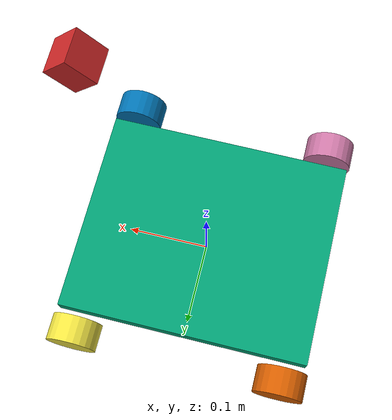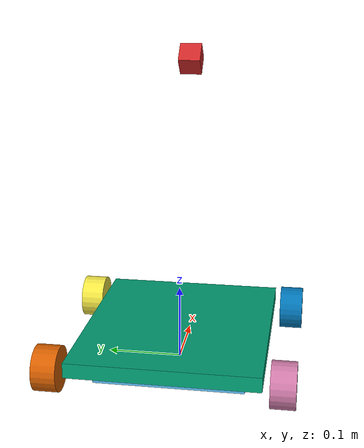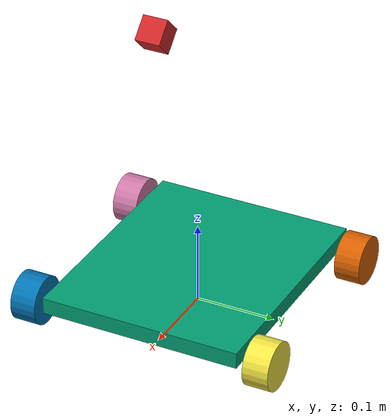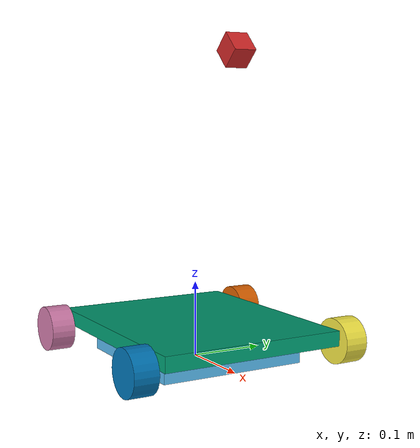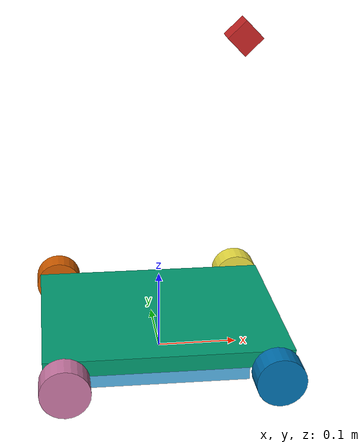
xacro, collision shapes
<?xml version="0.46"?>

<robot xmlns:xacro="http://ros.org/wiki/xacro" name="megabot">

  <!-- Include files for robot subcomponents -->
  <xacro:include filename="$(find megabot_description)/urdf/wheel.urdf.xacro" />
  <xacro:include filename="$(find megabot_description)/urdf/camera.urdf.xacro" />

  <!-- Global constants -->
  <xacro:property name="M_PI" value="3.14159"/>

  <!-- Root link for motion control -->
  <link name="base_footprint">
   <visual>
      <origin xyz="0 0 0" rpy="0 0 0" />
      <geometry>
        <box size="0.001 0.001 0.001" />
      </geometry>
    </visual>
  </link>
  <joint name="base_link_joint" type="fixed">
    <origin xyz="0 0 0" rpy="0 0 0" />
    <parent link="base_footprint"/>
    <child link="base_link" />
  </joint>

  <!-- Reference link -->
  <link name="base_link">
    <inertial>
      <mass value="50" />
      <origin xyz="0 0 0" />
      <inertia ixx="50.0" ixy="0.0" ixz="0.0"
        iyy="50.0" iyz="0.0"
        izz="50.0" />
    </inertial>
    <collision>
      <origin xyz="0 0 0.01" />
      <geometry>
        <box size="0.2 0.2 0.02" />
      </geometry>
    </collision>
  </link>

  <!-- Robot base plate -->
  <link name="base_plate">
    <inertial>
      <mass value="50" />
      <origin xyz="0 0 0" />
      <inertia ixx="50.0" ixy="0.0" ixz="0.0"
        iyy="50.0" iyz="0.0"
        izz="50.0" />
    </inertial>
    <visual>
      <geometry>
        <box size="0.3 0.25 0.02" />
      </geometry>
    </visual>
    <collision>
      <geometry>
        <box size="0.3 0.25 0.02" />
      </geometry>
    </collision>
  </link>
  <joint name="base_plate_joint" type="fixed">
    <origin xyz="0 0 0.04" rpy="0 0 0" />
    <parent link="base_link"/>
    <child link="base_plate" />
  </joint>

  <!-- Wheel parameters -->
  <xacro:property name="wheelbase" value="0.25" />
  <xacro:property name="track" value="0.3" />
  <xacro:property name="wheel_vertical_offset" value="0.03" />

  <!-- Wheel properties -->
  <xacro:property name="wheel_length" value="0.032" />
  <xacro:property name="wheel_radius" value="0.03" />

  <!-- Add wheels via macros -->
  <xacro:megabot_wheel wheel_prefix="front_left">
    <origin xyz="${wheelbase/2} ${track/2} ${wheel_vertical_offset}" rpy="0 0 0" />
  </xacro:megabot_wheel>
  <xacro:megabot_wheel wheel_prefix="front_right">
    <origin xyz="${wheelbase/2} ${-track/2} ${wheel_vertical_offset}" rpy="0 0 0" />
  </xacro:megabot_wheel>
  <xacro:megabot_wheel wheel_prefix="rear_left">
    <origin xyz="${-wheelbase/2} ${track/2} ${wheel_vertical_offset}" rpy="0 0 0" />
  </xacro:megabot_wheel>
  <xacro:megabot_wheel wheel_prefix="rear_right">
    <origin xyz="${-wheelbase/2} ${-track/2} ${wheel_vertical_offset}" rpy="0 0 0" />
  </xacro:megabot_wheel>

  <!-- Camera parameters -->
  <xacro:property name="camera_size" value="0.03" /> <!-- Size of square 'camera' box -->
  <xacro:property name="camera_front_offset" value="0.1" /> <!-- Size of square 'camera' box -->
  <xacro:property name="camera_height" value="0.4" /> <!-- Size of square 'camera' box -->
  <xacro:property name="camera_pitch" value="0.8" /> <!-- Size of square 'camera' box -->

  <!-- Add camera via macros -->
  <xacro:megabot_camera />

  <!-- Set method of motion control in Gazebo -->
  <gazebo>
    <plugin name="object_controller" filename="libgazebo_ros_planar_move.so">
      <commandTopic>cmd_vel</commandTopic>
      <odometryTopic>odom</odometryTopic>
      <odometryFrame>odom</odometryFrame>
      <odometryRate>20.0</odometryRate>
      <robotBaseFrame>base_footprint</robotBaseFrame>
    </plugin>
  </gazebo>

</robot>

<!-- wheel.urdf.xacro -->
<robot xmlns:xacro="http://ros.org/wiki/xacro" name="megabot_wheel">

	<xacro:macro name="megabot_wheel" params="wheel_prefix *joint_pose">
		<link name="${wheel_prefix}_wheel_link">
			<inertial>
				<mass value="2.637" />
				<origin xyz="0 0 0" />
				<inertia  ixx="0.02467" ixy="0" ixz="0" iyy="0.04411" iyz="0" izz="0.02467" />
			</inertial>
			<visual>
				<origin xyz="0 0 0" rpy="0 0 0" />
				<geometry>
					<mesh filename="package://husky_description/meshes/wheel.dae" />
				</geometry>
			</visual>
			<collision>
				<origin xyz="0 0 0" rpy="${M_PI/2} 0 0" />
				<geometry>
					<cylinder length="${wheel_length}" radius="${wheel_radius}" />
				</geometry>
			</collision>
		</link>

		<gazebo reference="${wheel_prefix}_wheel_link">
			<mu1 value="1.0"/>
			<mu2 value="1.0"/>
			<kp value="10000000.0" />
			<kd value="1.0" />
			<fdir1 value="1 0 0"/>
		</gazebo>

		<joint name="${wheel_prefix}_wheel" type="continuous">
			<parent link="base_link"/>
			<child link="${wheel_prefix}_wheel_link"/>
			<xacro:insert_block name="joint_pose"/>
			<axis xyz="0 1 0" rpy="0 0 0" />
		</joint>

		<transmission name="${wheel_prefix}_wheel_trans" type="SimpleTransmission">
			<type>transmission_interface/SimpleTransmission</type>
			<actuator name="${wheel_prefix}_wheel_motor">
				<mechanicalReduction>1</mechanicalReduction>
			</actuator>
			<joint name="${wheel_prefix}_wheel">
				<hardwareInterface>hardware_interface/VelocityJointInterface</hardwareInterface>
			</joint>
		</transmission>

	</xacro:macro>
</robot>

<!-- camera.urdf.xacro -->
<robot xmlns:xacro="http://ros.org/wiki/xacro" name="megabot_camera">

    <!-- Define macro for camera component -->
	<xacro:macro name="megabot_camera">
        <!-- Physical parameters -->
        <link name="camera_link">
            <collision>
            <origin xyz="0 0 0" rpy="0 0 0"/>
            <geometry>
            <box size="${camera_size} ${camera_size} ${camera_size}"/>
            </geometry>
            </collision>

            <visual>
            <origin xyz="0 0 0" rpy="0 0 0"/>
            <geometry>
            <box size="${camera_size} ${camera_size} ${camera_size}"/>
            </geometry>
            <material name="red"/>
            </visual>

            <inertial>
            <mass value="1e-5" />
            <origin xyz="0 0 0" rpy="0 0 0"/>
            <inertia ixx="1e-6" ixy="0" ixz="0" iyy="1e-6" iyz="0" izz="1e-6" />
            </inertial>
        </link>
        <joint name="camera_joint" type="fixed">
            <axis xyz="0 1 0" />
            <origin xyz="${camera_front_offset} 0 ${camera_height}" rpy="0 ${camera_pitch} 0"/>
            <parent link="base_link"/>
            <child link="camera_link"/>
        </joint>

        <!-- Simulation parameters -->
        <gazebo reference="camera_link">
            <sensor type="camera" name="camera1">
            <update_rate>30.0</update_rate>
            <camera name="head">
                <horizontal_fov>1.085595</horizontal_fov>
                <image>
                <width>1920</width>
                <height>1080</height>
                <format>R8G8B8</format>
                </image>
                <clip>
                <near>0.02</near>
                <far>300</far>
                </clip>
                <noise>
                <type>gaussian</type>
                <mean>0.0</mean>
                <stddev>0.007</stddev>
                </noise>
            </camera>
            <plugin name="camera_controller" filename="libgazebo_ros_camera.so">
                <alwaysOn>true</alwaysOn>
                <updateRate>0.0</updateRate>
                <cameraName>megabot/camera</cameraName>
                <imageTopicName>image_raw</imageTopicName>
                <cameraInfoTopicName>camera_info</cameraInfoTopicName>
                <frameName>camera_link</frameName>
                <hackBaseline>0.07</hackBaseline>
                <distortionK1>0.0</distortionK1>
                <distortionK2>0.0</distortionK2>
                <distortionK3>0.0</distortionK3>
                <distortionT1>0.0</distortionT1>
                <distortionT2>0.0</distortionT2>
            </plugin>
            </sensor>
        </gazebo>
	</xacro:macro>
</robot>
